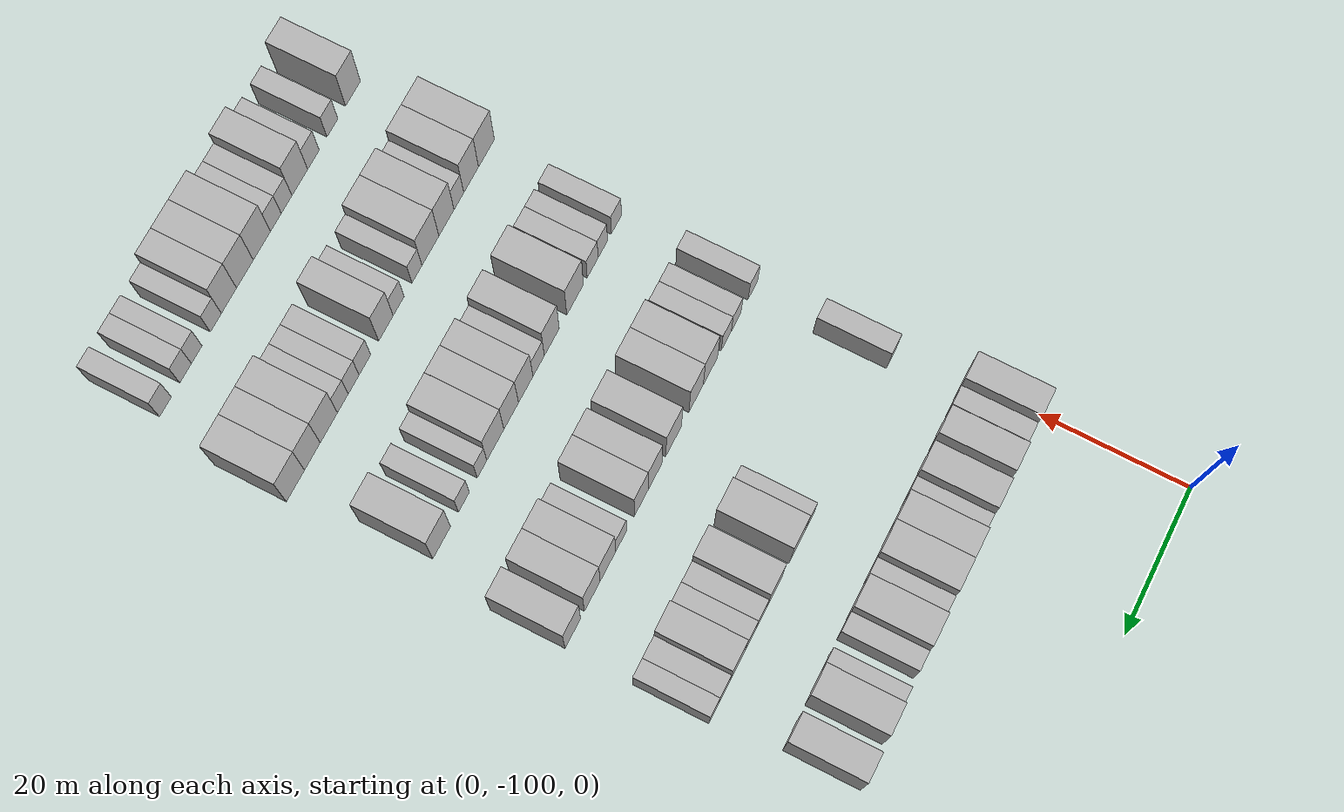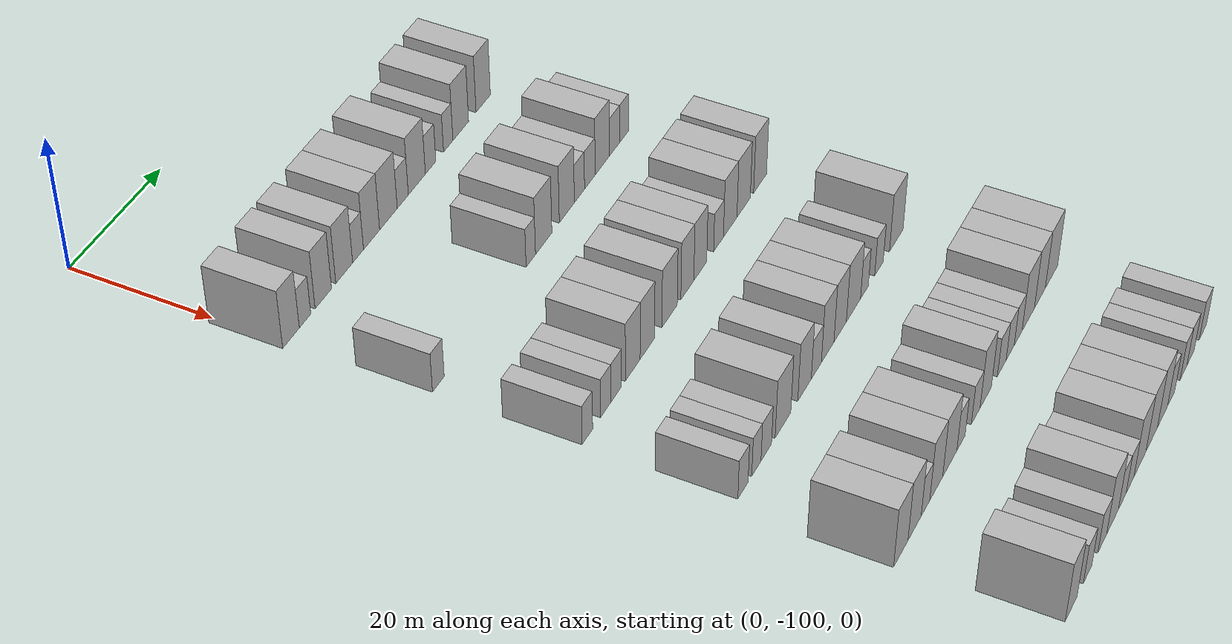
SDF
<sdf version="1.6">
 <world name="default">
  <model name="building_68">
   <static>1</static>
   <pose>25.0000 -98.9520 0 0.000000 0.000000 0.000000</pose>
   <link name="link">
    <pose>0 0 4.50 0 0 0</pose>
    <collision name="collision"><geometry><box><size>10.0000 3.7634 9.0000</size></box></geometry></collision>
    <visual name="visual">
     <cast_shadows>0</cast_shadows>
     <geometry><box><size>10.0000 3.7634 9.0000</size></box></geometry>
     <material>
      <script>
       <uri>model://HANNAS_wall/materials/scripts</uri>
       <uri>model://HANNAS_wall/materials/textures</uri>
       <name>vrc/HANNAS_wall</name>
      </script>
     </material>
    </visual>
   </link>
  </model>
  <model name="building_69">
   <static>1</static>
   <pose>25.0000 -95.7628 0 0.000000 0.000000 0.000000</pose>
   <link name="link">
    <pose>0 0 3.00 0 0 0</pose>
    <collision name="collision"><geometry><box><size>10.0000 2.6151 6.0000</size></box></geometry></collision>
    <visual name="visual">
     <cast_shadows>0</cast_shadows>
     <geometry><box><size>10.0000 2.6151 6.0000</size></box></geometry>
     <material>
      <script>
       <uri>model://HANNAS_wall/materials/scripts</uri>
       <uri>model://HANNAS_wall/materials/textures</uri>
       <name>vrc/HANNAS_wall</name>
      </script>
     </material>
    </visual>
   </link>
  </model>
  <model name="building_70">
   <static>1</static>
   <pose>25.0000 -91.5442 0 0.000000 0.000000 0.000000</pose>
   <link name="link">
    <pose>0 0 4.50 0 0 0</pose>
    <collision name="collision"><geometry><box><size>10.0000 3.8221 9.0000</size></box></geometry></collision>
    <visual name="visual">
     <cast_shadows>0</cast_shadows>
     <geometry><box><size>10.0000 3.8221 9.0000</size></box></geometry>
     <material>
      <script>
       <uri>model://HANNAS_wall/materials/scripts</uri>
       <uri>model://HANNAS_wall/materials/textures</uri>
       <name>vrc/HANNAS_wall</name>
      </script>
     </material>
    </visual>
   </link>
  </model>
  <model name="building_71">
   <static>1</static>
   <pose>25.0000 -86.6307 0 0.000000 0.000000 0.000000</pose>
   <link name="link">
    <pose>0 0 4.50 0 0 0</pose>
    <collision name="collision"><geometry><box><size>10.0000 4.0048 9.0000</size></box></geometry></collision>
    <visual name="visual">
     <cast_shadows>0</cast_shadows>
     <geometry><box><size>10.0000 4.0048 9.0000</size></box></geometry>
     <material>
      <script>
       <uri>model://HANNAS_wall/materials/scripts</uri>
       <uri>model://HANNAS_wall/materials/textures</uri>
       <name>vrc/HANNAS_wall</name>
      </script>
     </material>
    </visual>
   </link>
  </model>
  <model name="building_72">
   <static>1</static>
   <pose>25.0000 -83.3280 0 0.000000 0.000000 0.000000</pose>
   <link name="link">
    <pose>0 0 3.00 0 0 0</pose>
    <collision name="collision"><geometry><box><size>10.0000 2.6005 6.0000</size></box></geometry></collision>
    <visual name="visual">
     <cast_shadows>0</cast_shadows>
     <geometry><box><size>10.0000 2.6005 6.0000</size></box></geometry>
     <material>
      <script>
       <uri>model://HANNAS_wall/materials/scripts</uri>
       <uri>model://HANNAS_wall/materials/textures</uri>
       <name>vrc/HANNAS_wall</name>
      </script>
     </material>
    </visual>
   </link>
  </model>
  <model name="building_73">
   <static>1</static>
   <pose>25.0000 -80.0672 0 0.000000 0.000000 0.000000</pose>
   <link name="link">
    <pose>0 0 4.50 0 0 0</pose>
    <collision name="collision"><geometry><box><size>10.0000 3.9211 9.0000</size></box></geometry></collision>
    <visual name="visual">
     <cast_shadows>0</cast_shadows>
     <geometry><box><size>10.0000 3.9211 9.0000</size></box></geometry>
     <material>
      <script>
       <uri>model://HANNAS_wall/materials/scripts</uri>
       <uri>model://HANNAS_wall/materials/textures</uri>
       <name>vrc/HANNAS_wall</name>
      </script>
     </material>
    </visual>
   </link>
  </model>
  <model name="building_74">
   <static>1</static>
   <pose>25.0000 -75.9197 0 0.000000 0.000000 0.000000</pose>
   <link name="link">
    <pose>0 0 4.50 0 0 0</pose>
    <collision name="collision"><geometry><box><size>10.0000 4.3740 9.0000</size></box></geometry></collision>
    <visual name="visual">
     <cast_shadows>0</cast_shadows>
     <geometry><box><size>10.0000 4.3740 9.0000</size></box></geometry>
     <material>
      <script>
       <uri>model://HANNAS_wall/materials/scripts</uri>
       <uri>model://HANNAS_wall/materials/textures</uri>
       <name>vrc/HANNAS_wall</name>
      </script>
     </material>
    </visual>
   </link>
  </model>
  <model name="building_75">
   <static>1</static>
   <pose>25.0000 -72.3409 0 0.000000 0.000000 0.000000</pose>
   <link name="link">
    <pose>0 0 3.00 0 0 0</pose>
    <collision name="collision"><geometry><box><size>10.0000 2.7836 6.0000</size></box></geometry></collision>
    <visual name="visual">
     <cast_shadows>0</cast_shadows>
     <geometry><box><size>10.0000 2.7836 6.0000</size></box></geometry>
     <material>
      <script>
       <uri>model://HANNAS_wall/materials/scripts</uri>
       <uri>model://HANNAS_wall/materials/textures</uri>
       <name>vrc/HANNAS_wall</name>
      </script>
     </material>
    </visual>
   </link>
  </model>
  <model name="building_76">
   <static>1</static>
   <pose>25.0000 -68.7767 0 0.000000 0.000000 0.000000</pose>
   <link name="link">
    <pose>0 0 4.50 0 0 0</pose>
    <collision name="collision"><geometry><box><size>10.0000 4.3448 9.0000</size></box></geometry></collision>
    <visual name="visual">
     <cast_shadows>0</cast_shadows>
     <geometry><box><size>10.0000 4.3448 9.0000</size></box></geometry>
     <material>
      <script>
       <uri>model://HANNAS_wall/materials/scripts</uri>
       <uri>model://HANNAS_wall/materials/textures</uri>
       <name>vrc/HANNAS_wall</name>
      </script>
     </material>
    </visual>
   </link>
  </model>
  <model name="building_77">
   <static>1</static>
   <pose>25.0000 -65.2584 0 0.000000 0.000000 0.000000</pose>
   <link name="link">
    <pose>0 0 3.00 0 0 0</pose>
    <collision name="collision"><geometry><box><size>10.0000 2.6918 6.0000</size></box></geometry></collision>
    <visual name="visual">
     <cast_shadows>0</cast_shadows>
     <geometry><box><size>10.0000 2.6918 6.0000</size></box></geometry>
     <material>
      <script>
       <uri>model://HANNAS_wall/materials/scripts</uri>
       <uri>model://HANNAS_wall/materials/textures</uri>
       <name>vrc/HANNAS_wall</name>
      </script>
     </material>
    </visual>
   </link>
  </model>
  <model name="building_78">
   <static>1</static>
   <pose>25.0000 -60.6858 0 0.000000 0.000000 0.000000</pose>
   <link name="link">
    <pose>0 0 3.00 0 0 0</pose>
    <collision name="collision"><geometry><box><size>10.0000 2.4535 6.0000</size></box></geometry></collision>
    <visual name="visual">
     <cast_shadows>0</cast_shadows>
     <geometry><box><size>10.0000 2.4535 6.0000</size></box></geometry>
     <material>
      <script>
       <uri>model://HANNAS_wall/materials/scripts</uri>
       <uri>model://HANNAS_wall/materials/textures</uri>
       <name>vrc/HANNAS_wall</name>
      </script>
     </material>
    </visual>
   </link>
  </model>
  <model name="building_79">
   <static>1</static>
   <pose>25.0000 -57.3739 0 0.000000 0.000000 0.000000</pose>
   <link name="link">
    <pose>0 0 4.50 0 0 0</pose>
    <collision name="collision"><geometry><box><size>10.0000 4.1703 9.0000</size></box></geometry></collision>
    <visual name="visual">
     <cast_shadows>0</cast_shadows>
     <geometry><box><size>10.0000 4.1703 9.0000</size></box></geometry>
     <material>
      <script>
       <uri>model://HANNAS_wall/materials/scripts</uri>
       <uri>model://HANNAS_wall/materials/textures</uri>
       <name>vrc/HANNAS_wall</name>
      </script>
     </material>
    </visual>
   </link>
  </model>
  <model name="building_80">
   <static>1</static>
   <pose>25.0000 -51.3460 0 0.000000 0.000000 0.000000</pose>
   <link name="link">
    <pose>0 0 4.50 0 0 0</pose>
    <collision name="collision"><geometry><box><size>10.0000 3.8855 9.0000</size></box></geometry></collision>
    <visual name="visual">
     <cast_shadows>0</cast_shadows>
     <geometry><box><size>10.0000 3.8855 9.0000</size></box></geometry>
     <material>
      <script>
       <uri>model://HANNAS_wall/materials/scripts</uri>
       <uri>model://HANNAS_wall/materials/textures</uri>
       <name>vrc/HANNAS_wall</name>
      </script>
     </material>
    </visual>
   </link>
  </model>
  <model name="building_245">
   <static>1</static>
   <pose>44.0000 -98.1864 0 0.000000 0.000000 0.000000</pose>
   <link name="link">
    <pose>0 0 3.00 0 0 0</pose>
    <collision name="collision"><geometry><box><size>10.0000 2.7915 6.0000</size></box></geometry></collision>
    <visual name="visual">
     <cast_shadows>0</cast_shadows>
     <geometry><box><size>10.0000 2.7915 6.0000</size></box></geometry>
     <material>
      <script>
       <uri>model://HANNAS_wall/materials/scripts</uri>
       <uri>model://HANNAS_wall/materials/textures</uri>
       <name>vrc/HANNAS_wall</name>
      </script>
     </material>
    </visual>
   </link>
  </model>
  <model name="building_246">
   <static>1</static>
   <pose>44.0000 -75.1132 0 0.000000 0.000000 0.000000</pose>
   <link name="link">
    <pose>0 0 3.00 0 0 0</pose>
    <collision name="collision"><geometry><box><size>10.0000 2.4517 6.0000</size></box></geometry></collision>
    <visual name="visual">
     <cast_shadows>0</cast_shadows>
     <geometry><box><size>10.0000 2.4517 6.0000</size></box></geometry>
     <material>
      <script>
       <uri>model://HANNAS_wall/materials/scripts</uri>
       <uri>model://HANNAS_wall/materials/textures</uri>
       <name>vrc/HANNAS_wall</name>
      </script>
     </material>
    </visual>
   </link>
  </model>
  <model name="building_247">
   <static>1</static>
   <pose>44.0000 -71.7145 0 0.000000 0.000000 0.000000</pose>
   <link name="link">
    <pose>0 0 4.50 0 0 0</pose>
    <collision name="collision"><geometry><box><size>10.0000 4.3457 9.0000</size></box></geometry></collision>
    <visual name="visual">
     <cast_shadows>0</cast_shadows>
     <geometry><box><size>10.0000 4.3457 9.0000</size></box></geometry>
     <material>
      <script>
       <uri>model://HANNAS_wall/materials/scripts</uri>
       <uri>model://HANNAS_wall/materials/textures</uri>
       <name>vrc/HANNAS_wall</name>
      </script>
     </material>
    </visual>
   </link>
  </model>
  <model name="building_248">
   <static>1</static>
   <pose>44.0000 -65.5007 0 0.000000 0.000000 0.000000</pose>
   <link name="link">
    <pose>0 0 4.50 0 0 0</pose>
    <collision name="collision"><geometry><box><size>10.0000 4.0820 9.0000</size></box></geometry></collision>
    <visual name="visual">
     <cast_shadows>0</cast_shadows>
     <geometry><box><size>10.0000 4.0820 9.0000</size></box></geometry>
     <material>
      <script>
       <uri>model://HANNAS_wall/materials/scripts</uri>
       <uri>model://HANNAS_wall/materials/textures</uri>
       <name>vrc/HANNAS_wall</name>
      </script>
     </material>
    </visual>
   </link>
  </model>
  <model name="building_249">
   <static>1</static>
   <pose>44.0000 -62.0599 0 0.000000 0.000000 0.000000</pose>
   <link name="link">
    <pose>0 0 3.00 0 0 0</pose>
    <collision name="collision"><geometry><box><size>10.0000 2.7996 6.0000</size></box></geometry></collision>
    <visual name="visual">
     <cast_shadows>0</cast_shadows>
     <geometry><box><size>10.0000 2.7996 6.0000</size></box></geometry>
     <material>
      <script>
       <uri>model://HANNAS_wall/materials/scripts</uri>
       <uri>model://HANNAS_wall/materials/textures</uri>
       <name>vrc/HANNAS_wall</name>
      </script>
     </material>
    </visual>
   </link>
  </model>
  <model name="building_250">
   <static>1</static>
   <pose>44.0000 -59.1776 0 0.000000 0.000000 0.000000</pose>
   <link name="link">
    <pose>0 0 3.00 0 0 0</pose>
    <collision name="collision"><geometry><box><size>10.0000 2.9651 6.0000</size></box></geometry></collision>
    <visual name="visual">
     <cast_shadows>0</cast_shadows>
     <geometry><box><size>10.0000 2.9651 6.0000</size></box></geometry>
     <material>
      <script>
       <uri>model://HANNAS_wall/materials/scripts</uri>
       <uri>model://HANNAS_wall/materials/textures</uri>
       <name>vrc/HANNAS_wall</name>
      </script>
     </material>
    </visual>
   </link>
  </model>
  <model name="building_251">
   <static>1</static>
   <pose>44.0000 -55.6892 0 0.000000 0.000000 0.000000</pose>
   <link name="link">
    <pose>0 0 4.50 0 0 0</pose>
    <collision name="collision"><geometry><box><size>10.0000 4.0117 9.0000</size></box></geometry></collision>
    <visual name="visual">
     <cast_shadows>0</cast_shadows>
     <geometry><box><size>10.0000 4.0117 9.0000</size></box></geometry>
     <material>
      <script>
       <uri>model://HANNAS_wall/materials/scripts</uri>
       <uri>model://HANNAS_wall/materials/textures</uri>
       <name>vrc/HANNAS_wall</name>
      </script>
     </material>
    </visual>
   </link>
  </model>
  <model name="building_252">
   <static>1</static>
   <pose>44.0000 -52.2175 0 0.000000 0.000000 0.000000</pose>
   <link name="link">
    <pose>0 0 3.00 0 0 0</pose>
    <collision name="collision"><geometry><box><size>10.0000 2.9317 6.0000</size></box></geometry></collision>
    <visual name="visual">
     <cast_shadows>0</cast_shadows>
     <geometry><box><size>10.0000 2.9317 6.0000</size></box></geometry>
     <material>
      <script>
       <uri>model://HANNAS_wall/materials/scripts</uri>
       <uri>model://HANNAS_wall/materials/textures</uri>
       <name>vrc/HANNAS_wall</name>
      </script>
     </material>
    </visual>
   </link>
  </model>
  <model name="building_253">
   <static>1</static>
   <pose>44.0000 -49.4984 0 0.000000 0.000000 0.000000</pose>
   <link name="link">
    <pose>0 0 3.00 0 0 0</pose>
    <collision name="collision"><geometry><box><size>10.0000 2.5066 6.0000</size></box></geometry></collision>
    <visual name="visual">
     <cast_shadows>0</cast_shadows>
     <geometry><box><size>10.0000 2.5066 6.0000</size></box></geometry>
     <material>
      <script>
       <uri>model://HANNAS_wall/materials/scripts</uri>
       <uri>model://HANNAS_wall/materials/textures</uri>
       <name>vrc/HANNAS_wall</name>
      </script>
     </material>
    </visual>
   </link>
  </model>
  <model name="building_414">
   <static>1</static>
   <pose>63.0000 -98.3028 0 0.000000 0.000000 0.000000</pose>
   <link name="link">
    <pose>0 0 3.00 0 0 0</pose>
    <collision name="collision"><geometry><box><size>10.0000 2.6637 6.0000</size></box></geometry></collision>
    <visual name="visual">
     <cast_shadows>0</cast_shadows>
     <geometry><box><size>10.0000 2.6637 6.0000</size></box></geometry>
     <material>
      <script>
       <uri>model://HANNAS_wall/materials/scripts</uri>
       <uri>model://HANNAS_wall/materials/textures</uri>
       <name>vrc/HANNAS_wall</name>
      </script>
     </material>
    </visual>
   </link>
  </model>
  <model name="building_415">
   <static>1</static>
   <pose>63.0000 -93.6332 0 0.000000 0.000000 0.000000</pose>
   <link name="link">
    <pose>0 0 3.00 0 0 0</pose>
    <collision name="collision"><geometry><box><size>10.0000 2.6755 6.0000</size></box></geometry></collision>
    <visual name="visual">
     <cast_shadows>0</cast_shadows>
     <geometry><box><size>10.0000 2.6755 6.0000</size></box></geometry>
     <material>
      <script>
       <uri>model://HANNAS_wall/materials/scripts</uri>
       <uri>model://HANNAS_wall/materials/textures</uri>
       <name>vrc/HANNAS_wall</name>
      </script>
     </material>
    </visual>
   </link>
  </model>
  <model name="building_416">
   <static>1</static>
   <pose>63.0000 -90.9147 0 0.000000 0.000000 0.000000</pose>
   <link name="link">
    <pose>0 0 3.00 0 0 0</pose>
    <collision name="collision"><geometry><box><size>10.0000 2.7615 6.0000</size></box></geometry></collision>
    <visual name="visual">
     <cast_shadows>0</cast_shadows>
     <geometry><box><size>10.0000 2.7615 6.0000</size></box></geometry>
     <material>
      <script>
       <uri>model://HANNAS_wall/materials/scripts</uri>
       <uri>model://HANNAS_wall/materials/textures</uri>
       <name>vrc/HANNAS_wall</name>
      </script>
     </material>
    </visual>
   </link>
  </model>
  <model name="building_417">
   <static>1</static>
   <pose>63.0000 -86.5818 0 0.000000 0.000000 0.000000</pose>
   <link name="link">
    <pose>0 0 4.50 0 0 0</pose>
    <collision name="collision"><geometry><box><size>10.0000 3.9042 9.0000</size></box></geometry></collision>
    <visual name="visual">
     <cast_shadows>0</cast_shadows>
     <geometry><box><size>10.0000 3.9042 9.0000</size></box></geometry>
     <material>
      <script>
       <uri>model://HANNAS_wall/materials/scripts</uri>
       <uri>model://HANNAS_wall/materials/textures</uri>
       <name>vrc/HANNAS_wall</name>
      </script>
     </material>
    </visual>
   </link>
  </model>
  <model name="building_418">
   <static>1</static>
   <pose>63.0000 -82.6848 0 0.000000 0.000000 0.000000</pose>
   <link name="link">
    <pose>0 0 4.50 0 0 0</pose>
    <collision name="collision"><geometry><box><size>10.0000 3.8897 9.0000</size></box></geometry></collision>
    <visual name="visual">
     <cast_shadows>0</cast_shadows>
     <geometry><box><size>10.0000 3.8897 9.0000</size></box></geometry>
     <material>
      <script>
       <uri>model://HANNAS_wall/materials/scripts</uri>
       <uri>model://HANNAS_wall/materials/textures</uri>
       <name>vrc/HANNAS_wall</name>
      </script>
     </material>
    </visual>
   </link>
  </model>
  <model name="building_419">
   <static>1</static>
   <pose>63.0000 -76.6267 0 0.000000 0.000000 0.000000</pose>
   <link name="link">
    <pose>0 0 4.50 0 0 0</pose>
    <collision name="collision"><geometry><box><size>10.0000 4.2266 9.0000</size></box></geometry></collision>
    <visual name="visual">
     <cast_shadows>0</cast_shadows>
     <geometry><box><size>10.0000 4.2266 9.0000</size></box></geometry>
     <material>
      <script>
       <uri>model://HANNAS_wall/materials/scripts</uri>
       <uri>model://HANNAS_wall/materials/textures</uri>
       <name>vrc/HANNAS_wall</name>
      </script>
     </material>
    </visual>
   </link>
  </model>
  <model name="building_420">
   <static>1</static>
   <pose>63.0000 -71.6863 0 0.000000 0.000000 0.000000</pose>
   <link name="link">
    <pose>0 0 4.50 0 0 0</pose>
    <collision name="collision"><geometry><box><size>10.0000 3.6542 9.0000</size></box></geometry></collision>
    <visual name="visual">
     <cast_shadows>0</cast_shadows>
     <geometry><box><size>10.0000 3.6542 9.0000</size></box></geometry>
     <material>
      <script>
       <uri>model://HANNAS_wall/materials/scripts</uri>
       <uri>model://HANNAS_wall/materials/textures</uri>
       <name>vrc/HANNAS_wall</name>
      </script>
     </material>
    </visual>
   </link>
  </model>
  <model name="building_421">
   <static>1</static>
   <pose>63.0000 -68.0194 0 0.000000 0.000000 0.000000</pose>
   <link name="link">
    <pose>0 0 4.50 0 0 0</pose>
    <collision name="collision"><geometry><box><size>10.0000 3.6796 9.0000</size></box></geometry></collision>
    <visual name="visual">
     <cast_shadows>0</cast_shadows>
     <geometry><box><size>10.0000 3.6796 9.0000</size></box></geometry>
     <material>
      <script>
       <uri>model://HANNAS_wall/materials/scripts</uri>
       <uri>model://HANNAS_wall/materials/textures</uri>
       <name>vrc/HANNAS_wall</name>
      </script>
     </material>
    </visual>
   </link>
  </model>
  <model name="building_422">
   <static>1</static>
   <pose>63.0000 -62.7491 0 0.000000 0.000000 0.000000</pose>
   <link name="link">
    <pose>0 0 3.00 0 0 0</pose>
    <collision name="collision"><geometry><box><size>10.0000 2.8610 6.0000</size></box></geometry></collision>
    <visual name="visual">
     <cast_shadows>0</cast_shadows>
     <geometry><box><size>10.0000 2.8610 6.0000</size></box></geometry>
     <material>
      <script>
       <uri>model://HANNAS_wall/materials/scripts</uri>
       <uri>model://HANNAS_wall/materials/textures</uri>
       <name>vrc/HANNAS_wall</name>
      </script>
     </material>
    </visual>
   </link>
  </model>
  <model name="building_423">
   <static>1</static>
   <pose>63.0000 -59.3265 0 0.000000 0.000000 0.000000</pose>
   <link name="link">
    <pose>0 0 4.50 0 0 0</pose>
    <collision name="collision"><geometry><box><size>10.0000 3.9841 9.0000</size></box></geometry></collision>
    <visual name="visual">
     <cast_shadows>0</cast_shadows>
     <geometry><box><size>10.0000 3.9841 9.0000</size></box></geometry>
     <material>
      <script>
       <uri>model://HANNAS_wall/materials/scripts</uri>
       <uri>model://HANNAS_wall/materials/textures</uri>
       <name>vrc/HANNAS_wall</name>
      </script>
     </material>
    </visual>
   </link>
  </model>
  <model name="building_424">
   <static>1</static>
   <pose>63.0000 -55.3262 0 0.000000 0.000000 0.000000</pose>
   <link name="link">
    <pose>0 0 4.50 0 0 0</pose>
    <collision name="collision"><geometry><box><size>10.0000 4.0165 9.0000</size></box></geometry></collision>
    <visual name="visual">
     <cast_shadows>0</cast_shadows>
     <geometry><box><size>10.0000 4.0165 9.0000</size></box></geometry>
     <material>
      <script>
       <uri>model://HANNAS_wall/materials/scripts</uri>
       <uri>model://HANNAS_wall/materials/textures</uri>
       <name>vrc/HANNAS_wall</name>
      </script>
     </material>
    </visual>
   </link>
  </model>
  <model name="building_425">
   <static>1</static>
   <pose>63.0000 -50.3503 0 0.000000 0.000000 0.000000</pose>
   <link name="link">
    <pose>0 0 4.50 0 0 0</pose>
    <collision name="collision"><geometry><box><size>10.0000 3.9353 9.0000</size></box></geometry></collision>
    <visual name="visual">
     <cast_shadows>0</cast_shadows>
     <geometry><box><size>10.0000 3.9353 9.0000</size></box></geometry>
     <material>
      <script>
       <uri>model://HANNAS_wall/materials/scripts</uri>
       <uri>model://HANNAS_wall/materials/textures</uri>
       <name>vrc/HANNAS_wall</name>
      </script>
     </material>
    </visual>
   </link>
  </model>
  <model name="building_571">
   <static>1</static>
   <pose>82.0000 -98.2626 0 0.000000 0.000000 0.000000</pose>
   <link name="link">
    <pose>0 0 3.00 0 0 0</pose>
    <collision name="collision"><geometry><box><size>10.0000 2.7521 6.0000</size></box></geometry></collision>
    <visual name="visual">
     <cast_shadows>0</cast_shadows>
     <geometry><box><size>10.0000 2.7521 6.0000</size></box></geometry>
     <material>
      <script>
       <uri>model://HANNAS_wall/materials/scripts</uri>
       <uri>model://HANNAS_wall/materials/textures</uri>
       <name>vrc/HANNAS_wall</name>
      </script>
     </material>
    </visual>
   </link>
  </model>
  <model name="building_572">
   <static>1</static>
   <pose>82.0000 -94.6211 0 0.000000 0.000000 0.000000</pose>
   <link name="link">
    <pose>0 0 3.00 0 0 0</pose>
    <collision name="collision"><geometry><box><size>10.0000 2.5308 6.0000</size></box></geometry></collision>
    <visual name="visual">
     <cast_shadows>0</cast_shadows>
     <geometry><box><size>10.0000 2.5308 6.0000</size></box></geometry>
     <material>
      <script>
       <uri>model://HANNAS_wall/materials/scripts</uri>
       <uri>model://HANNAS_wall/materials/textures</uri>
       <name>vrc/HANNAS_wall</name>
      </script>
     </material>
    </visual>
   </link>
  </model>
  <model name="building_573">
   <static>1</static>
   <pose>82.0000 -91.8954 0 0.000000 0.000000 0.000000</pose>
   <link name="link">
    <pose>0 0 3.00 0 0 0</pose>
    <collision name="collision"><geometry><box><size>10.0000 2.9205 6.0000</size></box></geometry></collision>
    <visual name="visual">
     <cast_shadows>0</cast_shadows>
     <geometry><box><size>10.0000 2.9205 6.0000</size></box></geometry>
     <material>
      <script>
       <uri>model://HANNAS_wall/materials/scripts</uri>
       <uri>model://HANNAS_wall/materials/textures</uri>
       <name>vrc/HANNAS_wall</name>
      </script>
     </material>
    </visual>
   </link>
  </model>
  <model name="building_574">
   <static>1</static>
   <pose>82.0000 -87.2185 0 0.000000 0.000000 0.000000</pose>
   <link name="link">
    <pose>0 0 4.50 0 0 0</pose>
    <collision name="collision"><geometry><box><size>10.0000 4.4332 9.0000</size></box></geometry></collision>
    <visual name="visual">
     <cast_shadows>0</cast_shadows>
     <geometry><box><size>10.0000 4.4332 9.0000</size></box></geometry>
     <material>
      <script>
       <uri>model://HANNAS_wall/materials/scripts</uri>
       <uri>model://HANNAS_wall/materials/textures</uri>
       <name>vrc/HANNAS_wall</name>
      </script>
     </material>
    </visual>
   </link>
  </model>
  <model name="building_575">
   <static>1</static>
   <pose>82.0000 -81.0482 0 0.000000 0.000000 0.000000</pose>
   <link name="link">
    <pose>0 0 4.50 0 0 0</pose>
    <collision name="collision"><geometry><box><size>10.0000 3.9075 9.0000</size></box></geometry></collision>
    <visual name="visual">
     <cast_shadows>0</cast_shadows>
     <geometry><box><size>10.0000 3.9075 9.0000</size></box></geometry>
     <material>
      <script>
       <uri>model://HANNAS_wall/materials/scripts</uri>
       <uri>model://HANNAS_wall/materials/textures</uri>
       <name>vrc/HANNAS_wall</name>
      </script>
     </material>
    </visual>
   </link>
  </model>
  <model name="building_576">
   <static>1</static>
   <pose>82.0000 -77.6031 0 0.000000 0.000000 0.000000</pose>
   <link name="link">
    <pose>0 0 3.00 0 0 0</pose>
    <collision name="collision"><geometry><box><size>10.0000 2.9827 6.0000</size></box></geometry></collision>
    <visual name="visual">
     <cast_shadows>0</cast_shadows>
     <geometry><box><size>10.0000 2.9827 6.0000</size></box></geometry>
     <material>
      <script>
       <uri>model://HANNAS_wall/materials/scripts</uri>
       <uri>model://HANNAS_wall/materials/textures</uri>
       <name>vrc/HANNAS_wall</name>
      </script>
     </material>
    </visual>
   </link>
  </model>
  <model name="building_577">
   <static>1</static>
   <pose>82.0000 -74.2392 0 0.000000 0.000000 0.000000</pose>
   <link name="link">
    <pose>0 0 4.50 0 0 0</pose>
    <collision name="collision"><geometry><box><size>10.0000 3.7451 9.0000</size></box></geometry></collision>
    <visual name="visual">
     <cast_shadows>0</cast_shadows>
     <geometry><box><size>10.0000 3.7451 9.0000</size></box></geometry>
     <material>
      <script>
       <uri>model://HANNAS_wall/materials/scripts</uri>
       <uri>model://HANNAS_wall/materials/textures</uri>
       <name>vrc/HANNAS_wall</name>
      </script>
     </material>
    </visual>
   </link>
  </model>
  <model name="building_578">
   <static>1</static>
   <pose>82.0000 -70.4828 0 0.000000 0.000000 0.000000</pose>
   <link name="link">
    <pose>0 0 4.50 0 0 0</pose>
    <collision name="collision"><geometry><box><size>10.0000 3.7676 9.0000</size></box></geometry></collision>
    <visual name="visual">
     <cast_shadows>0</cast_shadows>
     <geometry><box><size>10.0000 3.7676 9.0000</size></box></geometry>
     <material>
      <script>
       <uri>model://HANNAS_wall/materials/scripts</uri>
       <uri>model://HANNAS_wall/materials/textures</uri>
       <name>vrc/HANNAS_wall</name>
      </script>
     </material>
    </visual>
   </link>
  </model>
  <model name="building_579">
   <static>1</static>
   <pose>82.0000 -66.4148 0 0.000000 0.000000 0.000000</pose>
   <link name="link">
    <pose>0 0 4.50 0 0 0</pose>
    <collision name="collision"><geometry><box><size>10.0000 4.3683 9.0000</size></box></geometry></collision>
    <visual name="visual">
     <cast_shadows>0</cast_shadows>
     <geometry><box><size>10.0000 4.3683 9.0000</size></box></geometry>
     <material>
      <script>
       <uri>model://HANNAS_wall/materials/scripts</uri>
       <uri>model://HANNAS_wall/materials/textures</uri>
       <name>vrc/HANNAS_wall</name>
      </script>
     </material>
    </visual>
   </link>
  </model>
  <model name="building_580">
   <static>1</static>
   <pose>82.0000 -63.0117 0 0.000000 0.000000 0.000000</pose>
   <link name="link">
    <pose>0 0 3.00 0 0 0</pose>
    <collision name="collision"><geometry><box><size>10.0000 2.4379 6.0000</size></box></geometry></collision>
    <visual name="visual">
     <cast_shadows>0</cast_shadows>
     <geometry><box><size>10.0000 2.4379 6.0000</size></box></geometry>
     <material>
      <script>
       <uri>model://HANNAS_wall/materials/scripts</uri>
       <uri>model://HANNAS_wall/materials/textures</uri>
       <name>vrc/HANNAS_wall</name>
      </script>
     </material>
    </visual>
   </link>
  </model>
  <model name="building_581">
   <static>1</static>
   <pose>82.0000 -58.4277 0 0.000000 0.000000 0.000000</pose>
   <link name="link">
    <pose>0 0 3.00 0 0 0</pose>
    <collision name="collision"><geometry><box><size>10.0000 2.7300 6.0000</size></box></geometry></collision>
    <visual name="visual">
     <cast_shadows>0</cast_shadows>
     <geometry><box><size>10.0000 2.7300 6.0000</size></box></geometry>
     <material>
      <script>
       <uri>model://HANNAS_wall/materials/scripts</uri>
       <uri>model://HANNAS_wall/materials/textures</uri>
       <name>vrc/HANNAS_wall</name>
      </script>
     </material>
    </visual>
   </link>
  </model>
  <model name="building_582">
   <static>1</static>
   <pose>82.0000 -52.8627 0 0.000000 0.000000 0.000000</pose>
   <link name="link">
    <pose>0 0 4.50 0 0 0</pose>
    <collision name="collision"><geometry><box><size>10.0000 4.4002 9.0000</size></box></geometry></collision>
    <visual name="visual">
     <cast_shadows>0</cast_shadows>
     <geometry><box><size>10.0000 4.4002 9.0000</size></box></geometry>
     <material>
      <script>
       <uri>model://HANNAS_wall/materials/scripts</uri>
       <uri>model://HANNAS_wall/materials/textures</uri>
       <name>vrc/HANNAS_wall</name>
      </script>
     </material>
    </visual>
   </link>
  </model>
  <model name="building_746">
   <static>1</static>
   <pose>101.0000 -99.3680 0 0.000000 0.000000 0.000000</pose>
   <link name="link">
    <pose>0 0 4.50 0 0 0</pose>
    <collision name="collision"><geometry><box><size>10.0000 4.1891 9.0000</size></box></geometry></collision>
    <visual name="visual">
     <cast_shadows>0</cast_shadows>
     <geometry><box><size>10.0000 4.1891 9.0000</size></box></geometry>
     <material>
      <script>
       <uri>model://HANNAS_wall/materials/scripts</uri>
       <uri>model://HANNAS_wall/materials/textures</uri>
       <name>vrc/HANNAS_wall</name>
      </script>
     </material>
    </visual>
   </link>
  </model>
  <model name="building_747">
   <static>1</static>
   <pose>101.0000 -95.3281 0 0.000000 0.000000 0.000000</pose>
   <link name="link">
    <pose>0 0 4.50 0 0 0</pose>
    <collision name="collision"><geometry><box><size>10.0000 3.8906 9.0000</size></box></geometry></collision>
    <visual name="visual">
     <cast_shadows>0</cast_shadows>
     <geometry><box><size>10.0000 3.8906 9.0000</size></box></geometry>
     <material>
      <script>
       <uri>model://HANNAS_wall/materials/scripts</uri>
       <uri>model://HANNAS_wall/materials/textures</uri>
       <name>vrc/HANNAS_wall</name>
      </script>
     </material>
    </visual>
   </link>
  </model>
  <model name="building_748">
   <static>1</static>
   <pose>101.0000 -92.1005 0 0.000000 0.000000 0.000000</pose>
   <link name="link">
    <pose>0 0 3.00 0 0 0</pose>
    <collision name="collision"><geometry><box><size>10.0000 2.5645 6.0000</size></box></geometry></collision>
    <visual name="visual">
     <cast_shadows>0</cast_shadows>
     <geometry><box><size>10.0000 2.5645 6.0000</size></box></geometry>
     <material>
      <script>
       <uri>model://HANNAS_wall/materials/scripts</uri>
       <uri>model://HANNAS_wall/materials/textures</uri>
       <name>vrc/HANNAS_wall</name>
      </script>
     </material>
    </visual>
   </link>
  </model>
  <model name="building_749">
   <static>1</static>
   <pose>101.0000 -88.8523 0 0.000000 0.000000 0.000000</pose>
   <link name="link">
    <pose>0 0 4.50 0 0 0</pose>
    <collision name="collision"><geometry><box><size>10.0000 3.9320 9.0000</size></box></geometry></collision>
    <visual name="visual">
     <cast_shadows>0</cast_shadows>
     <geometry><box><size>10.0000 3.9320 9.0000</size></box></geometry>
     <material>
      <script>
       <uri>model://HANNAS_wall/materials/scripts</uri>
       <uri>model://HANNAS_wall/materials/textures</uri>
       <name>vrc/HANNAS_wall</name>
      </script>
     </material>
    </visual>
   </link>
  </model>
  <model name="building_750">
   <static>1</static>
   <pose>101.0000 -84.6897 0 0.000000 0.000000 0.000000</pose>
   <link name="link">
    <pose>0 0 4.50 0 0 0</pose>
    <collision name="collision"><geometry><box><size>10.0000 4.3930 9.0000</size></box></geometry></collision>
    <visual name="visual">
     <cast_shadows>0</cast_shadows>
     <geometry><box><size>10.0000 4.3930 9.0000</size></box></geometry>
     <material>
      <script>
       <uri>model://HANNAS_wall/materials/scripts</uri>
       <uri>model://HANNAS_wall/materials/textures</uri>
       <name>vrc/HANNAS_wall</name>
      </script>
     </material>
    </visual>
   </link>
  </model>
  <model name="building_751">
   <static>1</static>
   <pose>101.0000 -81.2062 0 0.000000 0.000000 0.000000</pose>
   <link name="link">
    <pose>0 0 3.00 0 0 0</pose>
    <collision name="collision"><geometry><box><size>10.0000 2.5741 6.0000</size></box></geometry></collision>
    <visual name="visual">
     <cast_shadows>0</cast_shadows>
     <geometry><box><size>10.0000 2.5741 6.0000</size></box></geometry>
     <material>
      <script>
       <uri>model://HANNAS_wall/materials/scripts</uri>
       <uri>model://HANNAS_wall/materials/textures</uri>
       <name>vrc/HANNAS_wall</name>
      </script>
     </material>
    </visual>
   </link>
  </model>
  <model name="building_752">
   <static>1</static>
   <pose>101.0000 -76.5295 0 0.000000 0.000000 0.000000</pose>
   <link name="link">
    <pose>0 0 3.00 0 0 0</pose>
    <collision name="collision"><geometry><box><size>10.0000 2.7792 6.0000</size></box></geometry></collision>
    <visual name="visual">
     <cast_shadows>0</cast_shadows>
     <geometry><box><size>10.0000 2.7792 6.0000</size></box></geometry>
     <material>
      <script>
       <uri>model://HANNAS_wall/materials/scripts</uri>
       <uri>model://HANNAS_wall/materials/textures</uri>
       <name>vrc/HANNAS_wall</name>
      </script>
     </material>
    </visual>
   </link>
  </model>
  <model name="building_753">
   <static>1</static>
   <pose>101.0000 -73.3126 0 0.000000 0.000000 0.000000</pose>
   <link name="link">
    <pose>0 0 4.50 0 0 0</pose>
    <collision name="collision"><geometry><box><size>10.0000 3.6548 9.0000</size></box></geometry></collision>
    <visual name="visual">
     <cast_shadows>0</cast_shadows>
     <geometry><box><size>10.0000 3.6548 9.0000</size></box></geometry>
     <material>
      <script>
       <uri>model://HANNAS_wall/materials/scripts</uri>
       <uri>model://HANNAS_wall/materials/textures</uri>
       <name>vrc/HANNAS_wall</name>
      </script>
     </material>
    </visual>
   </link>
  </model>
  <model name="building_754">
   <static>1</static>
   <pose>101.0000 -68.0316 0 0.000000 0.000000 0.000000</pose>
   <link name="link">
    <pose>0 0 3.00 0 0 0</pose>
    <collision name="collision"><geometry><box><size>10.0000 2.9073 6.0000</size></box></geometry></collision>
    <visual name="visual">
     <cast_shadows>0</cast_shadows>
     <geometry><box><size>10.0000 2.9073 6.0000</size></box></geometry>
     <material>
      <script>
       <uri>model://HANNAS_wall/materials/scripts</uri>
       <uri>model://HANNAS_wall/materials/textures</uri>
       <name>vrc/HANNAS_wall</name>
      </script>
     </material>
    </visual>
   </link>
  </model>
  <model name="building_755">
   <static>1</static>
   <pose>101.0000 -65.2199 0 0.000000 0.000000 0.000000</pose>
   <link name="link">
    <pose>0 0 3.00 0 0 0</pose>
    <collision name="collision"><geometry><box><size>10.0000 2.7160 6.0000</size></box></geometry></collision>
    <visual name="visual">
     <cast_shadows>0</cast_shadows>
     <geometry><box><size>10.0000 2.7160 6.0000</size></box></geometry>
     <material>
      <script>
       <uri>model://HANNAS_wall/materials/scripts</uri>
       <uri>model://HANNAS_wall/materials/textures</uri>
       <name>vrc/HANNAS_wall</name>
      </script>
     </material>
    </visual>
   </link>
  </model>
  <model name="building_756">
   <static>1</static>
   <pose>101.0000 -62.5265 0 0.000000 0.000000 0.000000</pose>
   <link name="link">
    <pose>0 0 3.00 0 0 0</pose>
    <collision name="collision"><geometry><box><size>10.0000 2.6707 6.0000</size></box></geometry></collision>
    <visual name="visual">
     <cast_shadows>0</cast_shadows>
     <geometry><box><size>10.0000 2.6707 6.0000</size></box></geometry>
     <material>
      <script>
       <uri>model://HANNAS_wall/materials/scripts</uri>
       <uri>model://HANNAS_wall/materials/textures</uri>
       <name>vrc/HANNAS_wall</name>
      </script>
     </material>
    </visual>
   </link>
  </model>
  <model name="building_757">
   <static>1</static>
   <pose>101.0000 -59.0694 0 0.000000 0.000000 0.000000</pose>
   <link name="link">
    <pose>0 0 4.50 0 0 0</pose>
    <collision name="collision"><geometry><box><size>10.0000 4.2435 9.0000</size></box></geometry></collision>
    <visual name="visual">
     <cast_shadows>0</cast_shadows>
     <geometry><box><size>10.0000 4.2435 9.0000</size></box></geometry>
     <material>
      <script>
       <uri>model://HANNAS_wall/materials/scripts</uri>
       <uri>model://HANNAS_wall/materials/textures</uri>
       <name>vrc/HANNAS_wall</name>
      </script>
     </material>
    </visual>
   </link>
  </model>
  <model name="building_758">
   <static>1</static>
   <pose>101.0000 -55.0418 0 0.000000 0.000000 0.000000</pose>
   <link name="link">
    <pose>0 0 4.50 0 0 0</pose>
    <collision name="collision"><geometry><box><size>10.0000 3.8117 9.0000</size></box></geometry></collision>
    <visual name="visual">
     <cast_shadows>0</cast_shadows>
     <geometry><box><size>10.0000 3.8117 9.0000</size></box></geometry>
     <material>
      <script>
       <uri>model://HANNAS_wall/materials/scripts</uri>
       <uri>model://HANNAS_wall/materials/textures</uri>
       <name>vrc/HANNAS_wall</name>
      </script>
     </material>
    </visual>
   </link>
  </model>
  <model name="building_759">
   <static>1</static>
   <pose>101.0000 -50.9403 0 0.000000 0.000000 0.000000</pose>
   <link name="link">
    <pose>0 0 4.50 0 0 0</pose>
    <collision name="collision"><geometry><box><size>10.0000 4.3912 9.0000</size></box></geometry></collision>
    <visual name="visual">
     <cast_shadows>0</cast_shadows>
     <geometry><box><size>10.0000 4.3912 9.0000</size></box></geometry>
     <material>
      <script>
       <uri>model://HANNAS_wall/materials/scripts</uri>
       <uri>model://HANNAS_wall/materials/textures</uri>
       <name>vrc/HANNAS_wall</name>
      </script>
     </material>
    </visual>
   </link>
  </model>
  <model name="building_923">
   <static>1</static>
   <pose>120.0000 -98.8066 0 0.000000 0.000000 0.000000</pose>
   <link name="link">
    <pose>0 0 4.50 0 0 0</pose>
    <collision name="collision"><geometry><box><size>10.0000 3.8393 9.0000</size></box></geometry></collision>
    <visual name="visual">
     <cast_shadows>0</cast_shadows>
     <geometry><box><size>10.0000 3.8393 9.0000</size></box></geometry>
     <material>
      <script>
       <uri>model://HANNAS_wall/materials/scripts</uri>
       <uri>model://HANNAS_wall/materials/textures</uri>
       <name>vrc/HANNAS_wall</name>
      </script>
     </material>
    </visual>
   </link>
  </model>
  <model name="building_924">
   <static>1</static>
   <pose>120.0000 -93.4982 0 0.000000 0.000000 0.000000</pose>
   <link name="link">
    <pose>0 0 3.00 0 0 0</pose>
    <collision name="collision"><geometry><box><size>10.0000 2.7775 6.0000</size></box></geometry></collision>
    <visual name="visual">
     <cast_shadows>0</cast_shadows>
     <geometry><box><size>10.0000 2.7775 6.0000</size></box></geometry>
     <material>
      <script>
       <uri>model://HANNAS_wall/materials/scripts</uri>
       <uri>model://HANNAS_wall/materials/textures</uri>
       <name>vrc/HANNAS_wall</name>
      </script>
     </material>
    </visual>
   </link>
  </model>
  <model name="building_925">
   <static>1</static>
   <pose>120.0000 -88.6433 0 0.000000 0.000000 0.000000</pose>
   <link name="link">
    <pose>0 0 3.00 0 0 0</pose>
    <collision name="collision"><geometry><box><size>10.0000 2.9323 6.0000</size></box></geometry></collision>
    <visual name="visual">
     <cast_shadows>0</cast_shadows>
     <geometry><box><size>10.0000 2.9323 6.0000</size></box></geometry>
     <material>
      <script>
       <uri>model://HANNAS_wall/materials/scripts</uri>
       <uri>model://HANNAS_wall/materials/textures</uri>
       <name>vrc/HANNAS_wall</name>
      </script>
     </material>
    </visual>
   </link>
  </model>
  <model name="building_926">
   <static>1</static>
   <pose>120.0000 -85.1858 0 0.000000 0.000000 0.000000</pose>
   <link name="link">
    <pose>0 0 4.50 0 0 0</pose>
    <collision name="collision"><geometry><box><size>10.0000 3.9828 9.0000</size></box></geometry></collision>
    <visual name="visual">
     <cast_shadows>0</cast_shadows>
     <geometry><box><size>10.0000 3.9828 9.0000</size></box></geometry>
     <material>
      <script>
       <uri>model://HANNAS_wall/materials/scripts</uri>
       <uri>model://HANNAS_wall/materials/textures</uri>
       <name>vrc/HANNAS_wall</name>
      </script>
     </material>
    </visual>
   </link>
  </model>
  <model name="building_927">
   <static>1</static>
   <pose>120.0000 -81.8497 0 0.000000 0.000000 0.000000</pose>
   <link name="link">
    <pose>0 0 3.00 0 0 0</pose>
    <collision name="collision"><geometry><box><size>10.0000 2.6894 6.0000</size></box></geometry></collision>
    <visual name="visual">
     <cast_shadows>0</cast_shadows>
     <geometry><box><size>10.0000 2.6894 6.0000</size></box></geometry>
     <material>
      <script>
       <uri>model://HANNAS_wall/materials/scripts</uri>
       <uri>model://HANNAS_wall/materials/textures</uri>
       <name>vrc/HANNAS_wall</name>
      </script>
     </material>
    </visual>
   </link>
  </model>
  <model name="building_928">
   <static>1</static>
   <pose>120.0000 -79.1511 0 0.000000 0.000000 0.000000</pose>
   <link name="link">
    <pose>0 0 3.00 0 0 0</pose>
    <collision name="collision"><geometry><box><size>10.0000 2.7078 6.0000</size></box></geometry></collision>
    <visual name="visual">
     <cast_shadows>0</cast_shadows>
     <geometry><box><size>10.0000 2.7078 6.0000</size></box></geometry>
     <material>
      <script>
       <uri>model://HANNAS_wall/materials/scripts</uri>
       <uri>model://HANNAS_wall/materials/textures</uri>
       <name>vrc/HANNAS_wall</name>
      </script>
     </material>
    </visual>
   </link>
  </model>
  <model name="building_929">
   <static>1</static>
   <pose>120.0000 -75.6779 0 0.000000 0.000000 0.000000</pose>
   <link name="link">
    <pose>0 0 4.50 0 0 0</pose>
    <collision name="collision"><geometry><box><size>10.0000 4.2386 9.0000</size></box></geometry></collision>
    <visual name="visual">
     <cast_shadows>0</cast_shadows>
     <geometry><box><size>10.0000 4.2386 9.0000</size></box></geometry>
     <material>
      <script>
       <uri>model://HANNAS_wall/materials/scripts</uri>
       <uri>model://HANNAS_wall/materials/textures</uri>
       <name>vrc/HANNAS_wall</name>
      </script>
     </material>
    </visual>
   </link>
  </model>
  <model name="building_930">
   <static>1</static>
   <pose>120.0000 -71.4936 0 0.000000 0.000000 0.000000</pose>
   <link name="link">
    <pose>0 0 4.50 0 0 0</pose>
    <collision name="collision"><geometry><box><size>10.0000 4.1298 9.0000</size></box></geometry></collision>
    <visual name="visual">
     <cast_shadows>0</cast_shadows>
     <geometry><box><size>10.0000 4.1298 9.0000</size></box></geometry>
     <material>
      <script>
       <uri>model://HANNAS_wall/materials/scripts</uri>
       <uri>model://HANNAS_wall/materials/textures</uri>
       <name>vrc/HANNAS_wall</name>
      </script>
     </material>
    </visual>
   </link>
  </model>
  <model name="building_931">
   <static>1</static>
   <pose>120.0000 -67.5733 0 0.000000 0.000000 0.000000</pose>
   <link name="link">
    <pose>0 0 4.50 0 0 0</pose>
    <collision name="collision"><geometry><box><size>10.0000 3.7108 9.0000</size></box></geometry></collision>
    <visual name="visual">
     <cast_shadows>0</cast_shadows>
     <geometry><box><size>10.0000 3.7108 9.0000</size></box></geometry>
     <material>
      <script>
       <uri>model://HANNAS_wall/materials/scripts</uri>
       <uri>model://HANNAS_wall/materials/textures</uri>
       <name>vrc/HANNAS_wall</name>
      </script>
     </material>
    </visual>
   </link>
  </model>
  <model name="building_932">
   <static>1</static>
   <pose>120.0000 -64.3749 0 0.000000 0.000000 0.000000</pose>
   <link name="link">
    <pose>0 0 3.00 0 0 0</pose>
    <collision name="collision"><geometry><box><size>10.0000 2.6860 6.0000</size></box></geometry></collision>
    <visual name="visual">
     <cast_shadows>0</cast_shadows>
     <geometry><box><size>10.0000 2.6860 6.0000</size></box></geometry>
     <material>
      <script>
       <uri>model://HANNAS_wall/materials/scripts</uri>
       <uri>model://HANNAS_wall/materials/textures</uri>
       <name>vrc/HANNAS_wall</name>
      </script>
     </material>
    </visual>
   </link>
  </model>
  <model name="building_933">
   <static>1</static>
   <pose>120.0000 -59.7485 0 0.000000 0.000000 0.000000</pose>
   <link name="link">
    <pose>0 0 3.00 0 0 0</pose>
    <collision name="collision"><geometry><box><size>10.0000 2.5669 6.0000</size></box></geometry></collision>
    <visual name="visual">
     <cast_shadows>0</cast_shadows>
     <geometry><box><size>10.0000 2.5669 6.0000</size></box></geometry>
     <material>
      <script>
       <uri>model://HANNAS_wall/materials/scripts</uri>
       <uri>model://HANNAS_wall/materials/textures</uri>
       <name>vrc/HANNAS_wall</name>
      </script>
     </material>
    </visual>
   </link>
  </model>
  <model name="building_934">
   <static>1</static>
   <pose>120.0000 -57.0813 0 0.000000 0.000000 0.000000</pose>
   <link name="link">
    <pose>0 0 3.00 0 0 0</pose>
    <collision name="collision"><geometry><box><size>10.0000 2.7675 6.0000</size></box></geometry></collision>
    <visual name="visual">
     <cast_shadows>0</cast_shadows>
     <geometry><box><size>10.0000 2.7675 6.0000</size></box></geometry>
     <material>
      <script>
       <uri>model://HANNAS_wall/materials/scripts</uri>
       <uri>model://HANNAS_wall/materials/textures</uri>
       <name>vrc/HANNAS_wall</name>
      </script>
     </material>
    </visual>
   </link>
  </model>
  <model name="building_935">
   <static>1</static>
   <pose>120.0000 -52.2884 0 0.000000 0.000000 0.000000</pose>
   <link name="link">
    <pose>0 0 3.00 0 0 0</pose>
    <collision name="collision"><geometry><box><size>10.0000 2.8185 6.0000</size></box></geometry></collision>
    <visual name="visual">
     <cast_shadows>0</cast_shadows>
     <geometry><box><size>10.0000 2.8185 6.0000</size></box></geometry>
     <material>
      <script>
       <uri>model://HANNAS_wall/materials/scripts</uri>
       <uri>model://HANNAS_wall/materials/textures</uri>
       <name>vrc/HANNAS_wall</name>
      </script>
     </material>
    </visual>
   </link>
  </model>
 </world>
</sdf>
